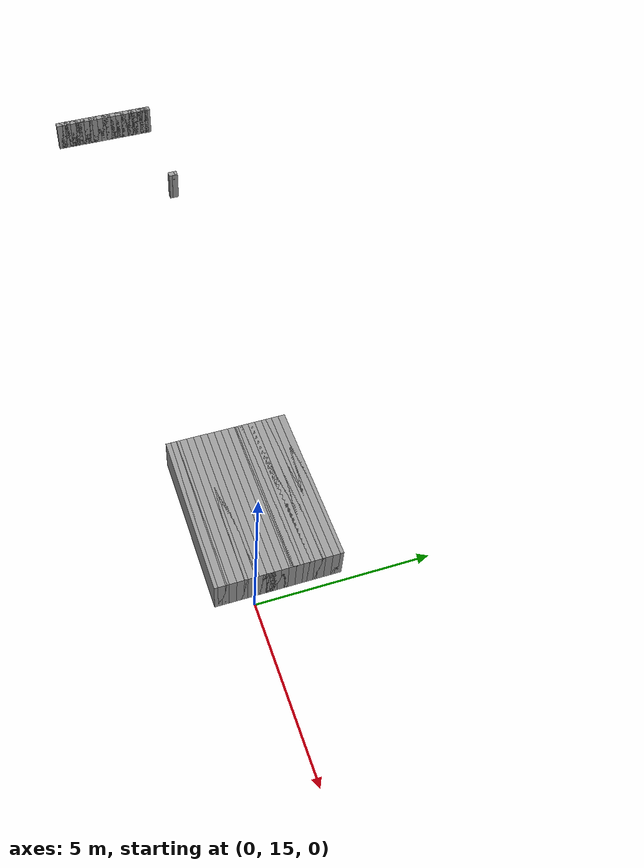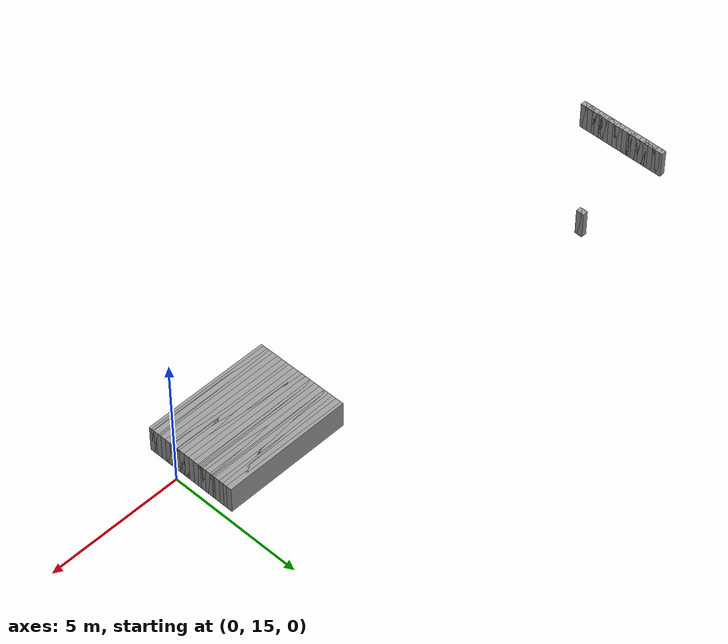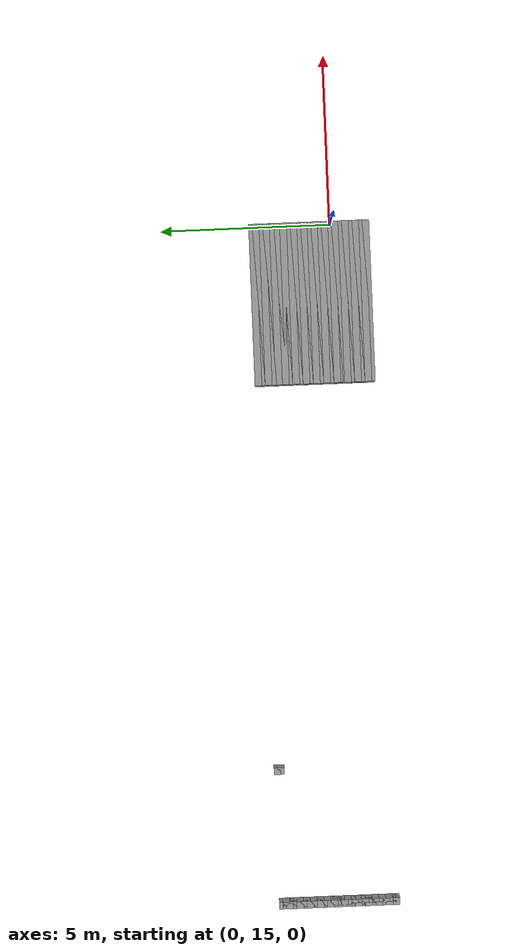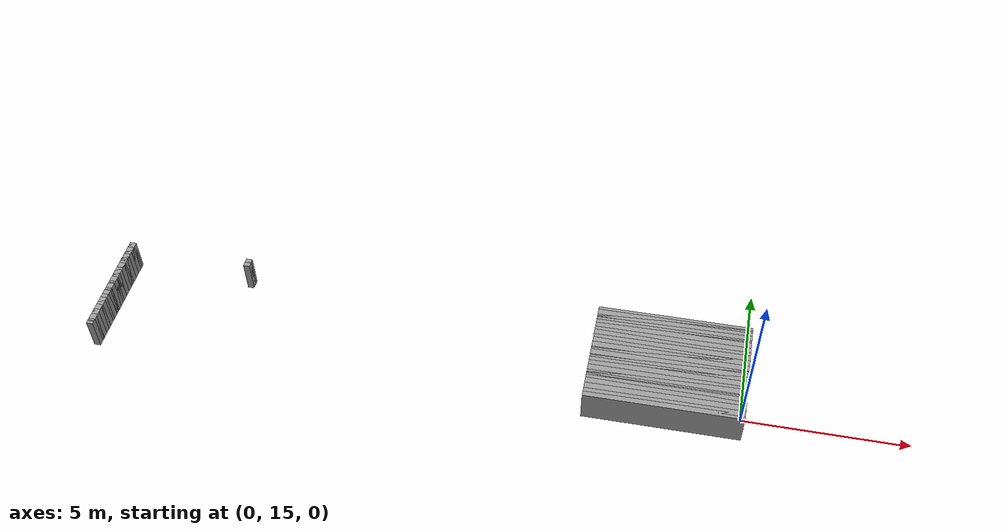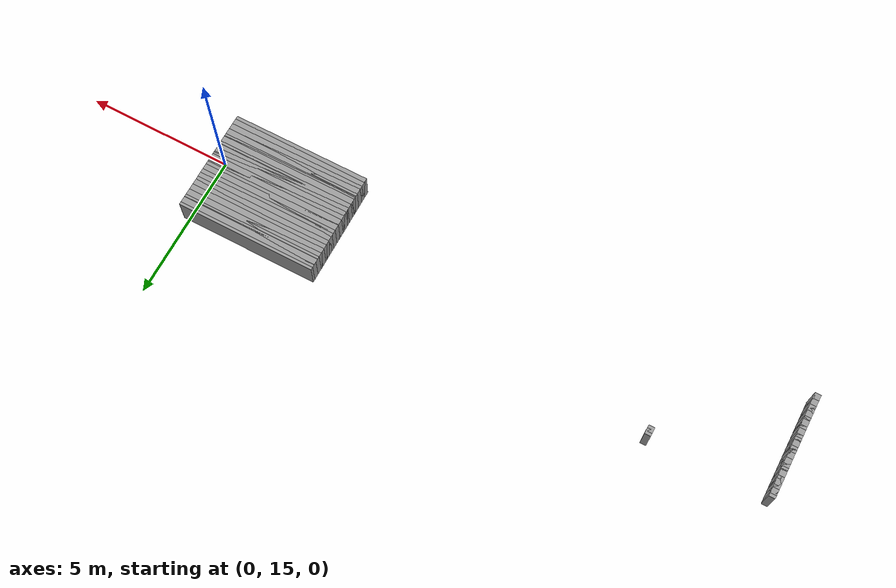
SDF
<sdf version="1.6">
 <world name="GridMap">
  <model name="GridMap">
   <link name="Wall_(198.0,139.0)">
    <collision name="Wall_(198.0,139.0)_Collision">
     <geometry><box><size>0.2 0.2 1.0</size></box></geometry>
     <pose>-19.8 13.9 0.5 0 -0 0</pose>
    </collision>
    <visual name="Wall_(198.0,139.0)_Visual">
     <geometry><box><size>0.2 0.2 1.0</size></box></geometry>
     <pose>-19.8 13.9 0.5 0 -0 0</pose>
     <material>
      <script><uri>file://media/materials/scripts/gazebo.material</uri><name>Gazebo/Grey</name></script>
      <ambient>1 1 1 1</ambient>
     </material>
     <meta><layer>0</layer></meta>
    </visual>
    <pose>0 0 0.5 0 -0 0</pose>
   </link>
   <link name="Wall_(23.5,140.0)">
    <collision name="Wall_(23.5,140.0)_Collision">
     <geometry><box><size>4.7 0.2 1.0</size></box></geometry>
     <pose>-2.35 14.0 0.5 0 -0 0</pose>
    </collision>
    <visual name="Wall_(23.5,140.0)_Visual">
     <geometry><box><size>4.7 0.2 1.0</size></box></geometry>
     <pose>-2.35 14.0 0.5 0 -0 0</pose>
     <material>
      <script><uri>file://media/materials/scripts/gazebo.material</uri><name>Gazebo/Grey</name></script>
      <ambient>1 1 1 1</ambient>
     </material>
     <meta><layer>0</layer></meta>
    </visual>
    <pose>0 0 0.5 0 -0 0</pose>
   </link>
   <link name="Wall_(198.0,140.0)">
    <collision name="Wall_(198.0,140.0)_Collision">
     <geometry><box><size>0.2 0.2 1.0</size></box></geometry>
     <pose>-19.8 14.0 0.5 0 -0 0</pose>
    </collision>
    <visual name="Wall_(198.0,140.0)_Visual">
     <geometry><box><size>0.2 0.2 1.0</size></box></geometry>
     <pose>-19.8 14.0 0.5 0 -0 0</pose>
     <material>
      <script><uri>file://media/materials/scripts/gazebo.material</uri><name>Gazebo/Grey</name></script>
      <ambient>1 1 1 1</ambient>
     </material>
     <meta><layer>0</layer></meta>
    </visual>
    <pose>0 0 0.5 0 -0 0</pose>
   </link>
   <link name="Wall_(23.5,141.0)">
    <collision name="Wall_(23.5,141.0)_Collision">
     <geometry><box><size>4.7 0.2 1.0</size></box></geometry>
     <pose>-2.35 14.1 0.5 0 -0 0</pose>
    </collision>
    <visual name="Wall_(23.5,141.0)_Visual">
     <geometry><box><size>4.7 0.2 1.0</size></box></geometry>
     <pose>-2.35 14.1 0.5 0 -0 0</pose>
     <material>
      <script><uri>file://media/materials/scripts/gazebo.material</uri><name>Gazebo/Grey</name></script>
      <ambient>1 1 1 1</ambient>
     </material>
     <meta><layer>0</layer></meta>
    </visual>
    <pose>0 0 0.5 0 -0 0</pose>
   </link>
   <link name="Wall_(198.0,141.0)">
    <collision name="Wall_(198.0,141.0)_Collision">
     <geometry><box><size>0.2 0.2 1.0</size></box></geometry>
     <pose>-19.8 14.1 0.5 0 -0 0</pose>
    </collision>
    <visual name="Wall_(198.0,141.0)_Visual">
     <geometry><box><size>0.2 0.2 1.0</size></box></geometry>
     <pose>-19.8 14.1 0.5 0 -0 0</pose>
     <material>
      <script><uri>file://media/materials/scripts/gazebo.material</uri><name>Gazebo/Grey</name></script>
      <ambient>1 1 1 1</ambient>
     </material>
     <meta><layer>0</layer></meta>
    </visual>
    <pose>0 0 0.5 0 -0 0</pose>
   </link>
   <link name="Wall_(23.5,142.0)">
    <collision name="Wall_(23.5,142.0)_Collision">
     <geometry><box><size>4.7 0.2 1.0</size></box></geometry>
     <pose>-2.35 14.2 0.5 0 -0 0</pose>
    </collision>
    <visual name="Wall_(23.5,142.0)_Visual">
     <geometry><box><size>4.7 0.2 1.0</size></box></geometry>
     <pose>-2.35 14.2 0.5 0 -0 0</pose>
     <material>
      <script><uri>file://media/materials/scripts/gazebo.material</uri><name>Gazebo/Grey</name></script>
      <ambient>1 1 1 1</ambient>
     </material>
     <meta><layer>0</layer></meta>
    </visual>
    <pose>0 0 0.5 0 -0 0</pose>
   </link>
   <link name="Wall_(198.0,142.0)">
    <collision name="Wall_(198.0,142.0)_Collision">
     <geometry><box><size>0.2 0.2 1.0</size></box></geometry>
     <pose>-19.8 14.2 0.5 0 -0 0</pose>
    </collision>
    <visual name="Wall_(198.0,142.0)_Visual">
     <geometry><box><size>0.2 0.2 1.0</size></box></geometry>
     <pose>-19.8 14.2 0.5 0 -0 0</pose>
     <material>
      <script><uri>file://media/materials/scripts/gazebo.material</uri><name>Gazebo/Grey</name></script>
      <ambient>1 1 1 1</ambient>
     </material>
     <meta><layer>0</layer></meta>
    </visual>
    <pose>0 0 0.5 0 -0 0</pose>
   </link>
   <link name="Wall_(23.5,143.0)">
    <collision name="Wall_(23.5,143.0)_Collision">
     <geometry><box><size>4.7 0.2 1.0</size></box></geometry>
     <pose>-2.35 14.3 0.5 0 -0 0</pose>
    </collision>
    <visual name="Wall_(23.5,143.0)_Visual">
     <geometry><box><size>4.7 0.2 1.0</size></box></geometry>
     <pose>-2.35 14.3 0.5 0 -0 0</pose>
     <material>
      <script><uri>file://media/materials/scripts/gazebo.material</uri><name>Gazebo/Grey</name></script>
      <ambient>1 1 1 1</ambient>
     </material>
     <meta><layer>0</layer></meta>
    </visual>
    <pose>0 0 0.5 0 -0 0</pose>
   </link>
   <link name="Wall_(198.0,143.0)">
    <collision name="Wall_(198.0,143.0)_Collision">
     <geometry><box><size>0.2 0.2 1.0</size></box></geometry>
     <pose>-19.8 14.3 0.5 0 -0 0</pose>
    </collision>
    <visual name="Wall_(198.0,143.0)_Visual">
     <geometry><box><size>0.2 0.2 1.0</size></box></geometry>
     <pose>-19.8 14.3 0.5 0 -0 0</pose>
     <material>
      <script><uri>file://media/materials/scripts/gazebo.material</uri><name>Gazebo/Grey</name></script>
      <ambient>1 1 1 1</ambient>
     </material>
     <meta><layer>0</layer></meta>
    </visual>
    <pose>0 0 0.5 0 -0 0</pose>
   </link>
   <link name="Wall_(23.5,144.0)">
    <collision name="Wall_(23.5,144.0)_Collision">
     <geometry><box><size>4.7 0.2 1.0</size></box></geometry>
     <pose>-2.35 14.4 0.5 0 -0 0</pose>
    </collision>
    <visual name="Wall_(23.5,144.0)_Visual">
     <geometry><box><size>4.7 0.2 1.0</size></box></geometry>
     <pose>-2.35 14.4 0.5 0 -0 0</pose>
     <material>
      <script><uri>file://media/materials/scripts/gazebo.material</uri><name>Gazebo/Grey</name></script>
      <ambient>1 1 1 1</ambient>
     </material>
     <meta><layer>0</layer></meta>
    </visual>
    <pose>0 0 0.5 0 -0 0</pose>
   </link>
   <link name="Wall_(198.0,144.0)">
    <collision name="Wall_(198.0,144.0)_Collision">
     <geometry><box><size>0.2 0.2 1.0</size></box></geometry>
     <pose>-19.8 14.4 0.5 0 -0 0</pose>
    </collision>
    <visual name="Wall_(198.0,144.0)_Visual">
     <geometry><box><size>0.2 0.2 1.0</size></box></geometry>
     <pose>-19.8 14.4 0.5 0 -0 0</pose>
     <material>
      <script><uri>file://media/materials/scripts/gazebo.material</uri><name>Gazebo/Grey</name></script>
      <ambient>1 1 1 1</ambient>
     </material>
     <meta><layer>0</layer></meta>
    </visual>
    <pose>0 0 0.5 0 -0 0</pose>
   </link>
   <link name="Wall_(23.5,145.0)">
    <collision name="Wall_(23.5,145.0)_Collision">
     <geometry><box><size>4.7 0.2 1.0</size></box></geometry>
     <pose>-2.35 14.5 0.5 0 -0 0</pose>
    </collision>
    <visual name="Wall_(23.5,145.0)_Visual">
     <geometry><box><size>4.7 0.2 1.0</size></box></geometry>
     <pose>-2.35 14.5 0.5 0 -0 0</pose>
     <material>
      <script><uri>file://media/materials/scripts/gazebo.material</uri><name>Gazebo/Grey</name></script>
      <ambient>1 1 1 1</ambient>
     </material>
     <meta><layer>0</layer></meta>
    </visual>
    <pose>0 0 0.5 0 -0 0</pose>
   </link>
   <link name="Wall_(198.0,145.0)">
    <collision name="Wall_(198.0,145.0)_Collision">
     <geometry><box><size>0.2 0.2 1.0</size></box></geometry>
     <pose>-19.8 14.5 0.5 0 -0 0</pose>
    </collision>
    <visual name="Wall_(198.0,145.0)_Visual">
     <geometry><box><size>0.2 0.2 1.0</size></box></geometry>
     <pose>-19.8 14.5 0.5 0 -0 0</pose>
     <material>
      <script><uri>file://media/materials/scripts/gazebo.material</uri><name>Gazebo/Grey</name></script>
      <ambient>1 1 1 1</ambient>
     </material>
     <meta><layer>0</layer></meta>
    </visual>
    <pose>0 0 0.5 0 -0 0</pose>
   </link>
   <link name="Wall_(23.5,146.0)">
    <collision name="Wall_(23.5,146.0)_Collision">
     <geometry><box><size>4.7 0.2 1.0</size></box></geometry>
     <pose>-2.35 14.6 0.5 0 -0 0</pose>
    </collision>
    <visual name="Wall_(23.5,146.0)_Visual">
     <geometry><box><size>4.7 0.2 1.0</size></box></geometry>
     <pose>-2.35 14.6 0.5 0 -0 0</pose>
     <material>
      <script><uri>file://media/materials/scripts/gazebo.material</uri><name>Gazebo/Grey</name></script>
      <ambient>1 1 1 1</ambient>
     </material>
     <meta><layer>0</layer></meta>
    </visual>
    <pose>0 0 0.5 0 -0 0</pose>
   </link>
   <link name="Wall_(198.0,146.0)">
    <collision name="Wall_(198.0,146.0)_Collision">
     <geometry><box><size>0.2 0.2 1.0</size></box></geometry>
     <pose>-19.8 14.6 0.5 0 -0 0</pose>
    </collision>
    <visual name="Wall_(198.0,146.0)_Visual">
     <geometry><box><size>0.2 0.2 1.0</size></box></geometry>
     <pose>-19.8 14.6 0.5 0 -0 0</pose>
     <material>
      <script><uri>file://media/materials/scripts/gazebo.material</uri><name>Gazebo/Grey</name></script>
      <ambient>1 1 1 1</ambient>
     </material>
     <meta><layer>0</layer></meta>
    </visual>
    <pose>0 0 0.5 0 -0 0</pose>
   </link>
   <link name="Wall_(23.5,147.0)">
    <collision name="Wall_(23.5,147.0)_Collision">
     <geometry><box><size>4.7 0.2 1.0</size></box></geometry>
     <pose>-2.35 14.7 0.5 0 -0 0</pose>
    </collision>
    <visual name="Wall_(23.5,147.0)_Visual">
     <geometry><box><size>4.7 0.2 1.0</size></box></geometry>
     <pose>-2.35 14.7 0.5 0 -0 0</pose>
     <material>
      <script><uri>file://media/materials/scripts/gazebo.material</uri><name>Gazebo/Grey</name></script>
      <ambient>1 1 1 1</ambient>
     </material>
     <meta><layer>0</layer></meta>
    </visual>
    <pose>0 0 0.5 0 -0 0</pose>
   </link>
   <link name="Wall_(198.0,147.0)">
    <collision name="Wall_(198.0,147.0)_Collision">
     <geometry><box><size>0.2 0.2 1.0</size></box></geometry>
     <pose>-19.8 14.7 0.5 0 -0 0</pose>
    </collision>
    <visual name="Wall_(198.0,147.0)_Visual">
     <geometry><box><size>0.2 0.2 1.0</size></box></geometry>
     <pose>-19.8 14.7 0.5 0 -0 0</pose>
     <material>
      <script><uri>file://media/materials/scripts/gazebo.material</uri><name>Gazebo/Grey</name></script>
      <ambient>1 1 1 1</ambient>
     </material>
     <meta><layer>0</layer></meta>
    </visual>
    <pose>0 0 0.5 0 -0 0</pose>
   </link>
   <link name="Wall_(23.5,148.0)">
    <collision name="Wall_(23.5,148.0)_Collision">
     <geometry><box><size>4.7 0.2 1.0</size></box></geometry>
     <pose>-2.35 14.8 0.5 0 -0 0</pose>
    </collision>
    <visual name="Wall_(23.5,148.0)_Visual">
     <geometry><box><size>4.7 0.2 1.0</size></box></geometry>
     <pose>-2.35 14.8 0.5 0 -0 0</pose>
     <material>
      <script><uri>file://media/materials/scripts/gazebo.material</uri><name>Gazebo/Grey</name></script>
      <ambient>1 1 1 1</ambient>
     </material>
     <meta><layer>0</layer></meta>
    </visual>
    <pose>0 0 0.5 0 -0 0</pose>
   </link>
   <link name="Wall_(198.0,148.0)">
    <collision name="Wall_(198.0,148.0)_Collision">
     <geometry><box><size>0.2 0.2 1.0</size></box></geometry>
     <pose>-19.8 14.8 0.5 0 -0 0</pose>
    </collision>
    <visual name="Wall_(198.0,148.0)_Visual">
     <geometry><box><size>0.2 0.2 1.0</size></box></geometry>
     <pose>-19.8 14.8 0.5 0 -0 0</pose>
     <material>
      <script><uri>file://media/materials/scripts/gazebo.material</uri><name>Gazebo/Grey</name></script>
      <ambient>1 1 1 1</ambient>
     </material>
     <meta><layer>0</layer></meta>
    </visual>
    <pose>0 0 0.5 0 -0 0</pose>
   </link>
   <link name="Wall_(23.5,149.0)">
    <collision name="Wall_(23.5,149.0)_Collision">
     <geometry><box><size>4.7 0.2 1.0</size></box></geometry>
     <pose>-2.35 14.9 0.5 0 -0 0</pose>
    </collision>
    <visual name="Wall_(23.5,149.0)_Visual">
     <geometry><box><size>4.7 0.2 1.0</size></box></geometry>
     <pose>-2.35 14.9 0.5 0 -0 0</pose>
     <material>
      <script><uri>file://media/materials/scripts/gazebo.material</uri><name>Gazebo/Grey</name></script>
      <ambient>1 1 1 1</ambient>
     </material>
     <meta><layer>0</layer></meta>
    </visual>
    <pose>0 0 0.5 0 -0 0</pose>
   </link>
   <link name="Wall_(198.0,149.0)">
    <collision name="Wall_(198.0,149.0)_Collision">
     <geometry><box><size>0.2 0.2 1.0</size></box></geometry>
     <pose>-19.8 14.9 0.5 0 -0 0</pose>
    </collision>
    <visual name="Wall_(198.0,149.0)_Visual">
     <geometry><box><size>0.2 0.2 1.0</size></box></geometry>
     <pose>-19.8 14.9 0.5 0 -0 0</pose>
     <material>
      <script><uri>file://media/materials/scripts/gazebo.material</uri><name>Gazebo/Grey</name></script>
      <ambient>1 1 1 1</ambient>
     </material>
     <meta><layer>0</layer></meta>
    </visual>
    <pose>0 0 0.5 0 -0 0</pose>
   </link>
   <link name="Wall_(23.5,150.0)">
    <collision name="Wall_(23.5,150.0)_Collision">
     <geometry><box><size>4.7 0.2 1.0</size></box></geometry>
     <pose>-2.35 15.0 0.5 0 -0 0</pose>
    </collision>
    <visual name="Wall_(23.5,150.0)_Visual">
     <geometry><box><size>4.7 0.2 1.0</size></box></geometry>
     <pose>-2.35 15.0 0.5 0 -0 0</pose>
     <material>
      <script><uri>file://media/materials/scripts/gazebo.material</uri><name>Gazebo/Grey</name></script>
      <ambient>1 1 1 1</ambient>
     </material>
     <meta><layer>0</layer></meta>
    </visual>
    <pose>0 0 0.5 0 -0 0</pose>
   </link>
   <link name="Wall_(198.0,150.0)">
    <collision name="Wall_(198.0,150.0)_Collision">
     <geometry><box><size>0.2 0.2 1.0</size></box></geometry>
     <pose>-19.8 15.0 0.5 0 -0 0</pose>
    </collision>
    <visual name="Wall_(198.0,150.0)_Visual">
     <geometry><box><size>0.2 0.2 1.0</size></box></geometry>
     <pose>-19.8 15.0 0.5 0 -0 0</pose>
     <material>
      <script><uri>file://media/materials/scripts/gazebo.material</uri><name>Gazebo/Grey</name></script>
      <ambient>1 1 1 1</ambient>
     </material>
     <meta><layer>0</layer></meta>
    </visual>
    <pose>0 0 0.5 0 -0 0</pose>
   </link>
   <link name="Wall_(23.5,151.0)">
    <collision name="Wall_(23.5,151.0)_Collision">
     <geometry><box><size>4.7 0.2 1.0</size></box></geometry>
     <pose>-2.35 15.1 0.5 0 -0 0</pose>
    </collision>
    <visual name="Wall_(23.5,151.0)_Visual">
     <geometry><box><size>4.7 0.2 1.0</size></box></geometry>
     <pose>-2.35 15.1 0.5 0 -0 0</pose>
     <material>
      <script><uri>file://media/materials/scripts/gazebo.material</uri><name>Gazebo/Grey</name></script>
      <ambient>1 1 1 1</ambient>
     </material>
     <meta><layer>0</layer></meta>
    </visual>
    <pose>0 0 0.5 0 -0 0</pose>
   </link>
   <link name="Wall_(198.0,151.0)">
    <collision name="Wall_(198.0,151.0)_Collision">
     <geometry><box><size>0.2 0.2 1.0</size></box></geometry>
     <pose>-19.8 15.1 0.5 0 -0 0</pose>
    </collision>
    <visual name="Wall_(198.0,151.0)_Visual">
     <geometry><box><size>0.2 0.2 1.0</size></box></geometry>
     <pose>-19.8 15.1 0.5 0 -0 0</pose>
     <material>
      <script><uri>file://media/materials/scripts/gazebo.material</uri><name>Gazebo/Grey</name></script>
      <ambient>1 1 1 1</ambient>
     </material>
     <meta><layer>0</layer></meta>
    </visual>
    <pose>0 0 0.5 0 -0 0</pose>
   </link>
   <link name="Wall_(23.5,152.0)">
    <collision name="Wall_(23.5,152.0)_Collision">
     <geometry><box><size>4.7 0.2 1.0</size></box></geometry>
     <pose>-2.35 15.2 0.5 0 -0 0</pose>
    </collision>
    <visual name="Wall_(23.5,152.0)_Visual">
     <geometry><box><size>4.7 0.2 1.0</size></box></geometry>
     <pose>-2.35 15.2 0.5 0 -0 0</pose>
     <material>
      <script><uri>file://media/materials/scripts/gazebo.material</uri><name>Gazebo/Grey</name></script>
      <ambient>1 1 1 1</ambient>
     </material>
     <meta><layer>0</layer></meta>
    </visual>
    <pose>0 0 0.5 0 -0 0</pose>
   </link>
   <link name="Wall_(198.0,152.0)">
    <collision name="Wall_(198.0,152.0)_Collision">
     <geometry><box><size>0.2 0.2 1.0</size></box></geometry>
     <pose>-19.8 15.2 0.5 0 -0 0</pose>
    </collision>
    <visual name="Wall_(198.0,152.0)_Visual">
     <geometry><box><size>0.2 0.2 1.0</size></box></geometry>
     <pose>-19.8 15.2 0.5 0 -0 0</pose>
     <material>
      <script><uri>file://media/materials/scripts/gazebo.material</uri><name>Gazebo/Grey</name></script>
      <ambient>1 1 1 1</ambient>
     </material>
     <meta><layer>0</layer></meta>
    </visual>
    <pose>0 0 0.5 0 -0 0</pose>
   </link>
   <link name="Wall_(23.5,153.0)">
    <collision name="Wall_(23.5,153.0)_Collision">
     <geometry><box><size>4.7 0.2 1.0</size></box></geometry>
     <pose>-2.35 15.3 0.5 0 -0 0</pose>
    </collision>
    <visual name="Wall_(23.5,153.0)_Visual">
     <geometry><box><size>4.7 0.2 1.0</size></box></geometry>
     <pose>-2.35 15.3 0.5 0 -0 0</pose>
     <material>
      <script><uri>file://media/materials/scripts/gazebo.material</uri><name>Gazebo/Grey</name></script>
      <ambient>1 1 1 1</ambient>
     </material>
     <meta><layer>0</layer></meta>
    </visual>
    <pose>0 0 0.5 0 -0 0</pose>
   </link>
   <link name="Wall_(198.0,153.0)">
    <collision name="Wall_(198.0,153.0)_Collision">
     <geometry><box><size>0.2 0.2 1.0</size></box></geometry>
     <pose>-19.8 15.3 0.5 0 -0 0</pose>
    </collision>
    <visual name="Wall_(198.0,153.0)_Visual">
     <geometry><box><size>0.2 0.2 1.0</size></box></geometry>
     <pose>-19.8 15.3 0.5 0 -0 0</pose>
     <material>
      <script><uri>file://media/materials/scripts/gazebo.material</uri><name>Gazebo/Grey</name></script>
      <ambient>1 1 1 1</ambient>
     </material>
     <meta><layer>0</layer></meta>
    </visual>
    <pose>0 0 0.5 0 -0 0</pose>
   </link>
   <link name="Wall_(23.5,154.0)">
    <collision name="Wall_(23.5,154.0)_Collision">
     <geometry><box><size>4.7 0.2 1.0</size></box></geometry>
     <pose>-2.35 15.4 0.5 0 -0 0</pose>
    </collision>
    <visual name="Wall_(23.5,154.0)_Visual">
     <geometry><box><size>4.7 0.2 1.0</size></box></geometry>
     <pose>-2.35 15.4 0.5 0 -0 0</pose>
     <material>
      <script><uri>file://media/materials/scripts/gazebo.material</uri><name>Gazebo/Grey</name></script>
      <ambient>1 1 1 1</ambient>
     </material>
     <meta><layer>0</layer></meta>
    </visual>
    <pose>0 0 0.5 0 -0 0</pose>
   </link>
   <link name="Wall_(198.0,154.0)">
    <collision name="Wall_(198.0,154.0)_Collision">
     <geometry><box><size>0.2 0.2 1.0</size></box></geometry>
     <pose>-19.8 15.4 0.5 0 -0 0</pose>
    </collision>
    <visual name="Wall_(198.0,154.0)_Visual">
     <geometry><box><size>0.2 0.2 1.0</size></box></geometry>
     <pose>-19.8 15.4 0.5 0 -0 0</pose>
     <material>
      <script><uri>file://media/materials/scripts/gazebo.material</uri><name>Gazebo/Grey</name></script>
      <ambient>1 1 1 1</ambient>
     </material>
     <meta><layer>0</layer></meta>
    </visual>
    <pose>0 0 0.5 0 -0 0</pose>
   </link>
   <link name="Wall_(23.5,155.0)">
    <collision name="Wall_(23.5,155.0)_Collision">
     <geometry><box><size>4.7 0.2 1.0</size></box></geometry>
     <pose>-2.35 15.5 0.5 0 -0 0</pose>
    </collision>
    <visual name="Wall_(23.5,155.0)_Visual">
     <geometry><box><size>4.7 0.2 1.0</size></box></geometry>
     <pose>-2.35 15.5 0.5 0 -0 0</pose>
     <material>
      <script><uri>file://media/materials/scripts/gazebo.material</uri><name>Gazebo/Grey</name></script>
      <ambient>1 1 1 1</ambient>
     </material>
     <meta><layer>0</layer></meta>
    </visual>
    <pose>0 0 0.5 0 -0 0</pose>
   </link>
   <link name="Wall_(198.0,155.0)">
    <collision name="Wall_(198.0,155.0)_Collision">
     <geometry><box><size>0.2 0.2 1.0</size></box></geometry>
     <pose>-19.8 15.5 0.5 0 -0 0</pose>
    </collision>
    <visual name="Wall_(198.0,155.0)_Visual">
     <geometry><box><size>0.2 0.2 1.0</size></box></geometry>
     <pose>-19.8 15.5 0.5 0 -0 0</pose>
     <material>
      <script><uri>file://media/materials/scripts/gazebo.material</uri><name>Gazebo/Grey</name></script>
      <ambient>1 1 1 1</ambient>
     </material>
     <meta><layer>0</layer></meta>
    </visual>
    <pose>0 0 0.5 0 -0 0</pose>
   </link>
   <link name="Wall_(23.5,156.0)">
    <collision name="Wall_(23.5,156.0)_Collision">
     <geometry><box><size>4.7 0.2 1.0</size></box></geometry>
     <pose>-2.35 15.6 0.5 0 -0 0</pose>
    </collision>
    <visual name="Wall_(23.5,156.0)_Visual">
     <geometry><box><size>4.7 0.2 1.0</size></box></geometry>
     <pose>-2.35 15.6 0.5 0 -0 0</pose>
     <material>
      <script><uri>file://media/materials/scripts/gazebo.material</uri><name>Gazebo/Grey</name></script>
      <ambient>1 1 1 1</ambient>
     </material>
     <meta><layer>0</layer></meta>
    </visual>
    <pose>0 0 0.5 0 -0 0</pose>
   </link>
   <link name="Wall_(198.0,156.0)">
    <collision name="Wall_(198.0,156.0)_Collision">
     <geometry><box><size>0.2 0.2 1.0</size></box></geometry>
     <pose>-19.8 15.6 0.5 0 -0 0</pose>
    </collision>
    <visual name="Wall_(198.0,156.0)_Visual">
     <geometry><box><size>0.2 0.2 1.0</size></box></geometry>
     <pose>-19.8 15.6 0.5 0 -0 0</pose>
     <material>
      <script><uri>file://media/materials/scripts/gazebo.material</uri><name>Gazebo/Grey</name></script>
      <ambient>1 1 1 1</ambient>
     </material>
     <meta><layer>0</layer></meta>
    </visual>
    <pose>0 0 0.5 0 -0 0</pose>
   </link>
   <link name="Wall_(23.5,157.0)">
    <collision name="Wall_(23.5,157.0)_Collision">
     <geometry><box><size>4.7 0.2 1.0</size></box></geometry>
     <pose>-2.35 15.7 0.5 0 -0 0</pose>
    </collision>
    <visual name="Wall_(23.5,157.0)_Visual">
     <geometry><box><size>4.7 0.2 1.0</size></box></geometry>
     <pose>-2.35 15.7 0.5 0 -0 0</pose>
     <material>
      <script><uri>file://media/materials/scripts/gazebo.material</uri><name>Gazebo/Grey</name></script>
      <ambient>1 1 1 1</ambient>
     </material>
     <meta><layer>0</layer></meta>
    </visual>
    <pose>0 0 0.5 0 -0 0</pose>
   </link>
   <link name="Wall_(198.0,157.0)">
    <collision name="Wall_(198.0,157.0)_Collision">
     <geometry><box><size>0.2 0.2 1.0</size></box></geometry>
     <pose>-19.8 15.7 0.5 0 -0 0</pose>
    </collision>
    <visual name="Wall_(198.0,157.0)_Visual">
     <geometry><box><size>0.2 0.2 1.0</size></box></geometry>
     <pose>-19.8 15.7 0.5 0 -0 0</pose>
     <material>
      <script><uri>file://media/materials/scripts/gazebo.material</uri><name>Gazebo/Grey</name></script>
      <ambient>1 1 1 1</ambient>
     </material>
     <meta><layer>0</layer></meta>
    </visual>
    <pose>0 0 0.5 0 -0 0</pose>
   </link>
   <link name="Wall_(23.5,158.0)">
    <collision name="Wall_(23.5,158.0)_Collision">
     <geometry><box><size>4.7 0.2 1.0</size></box></geometry>
     <pose>-2.35 15.8 0.5 0 -0 0</pose>
    </collision>
    <visual name="Wall_(23.5,158.0)_Visual">
     <geometry><box><size>4.7 0.2 1.0</size></box></geometry>
     <pose>-2.35 15.8 0.5 0 -0 0</pose>
     <material>
      <script><uri>file://media/materials/scripts/gazebo.material</uri><name>Gazebo/Grey</name></script>
      <ambient>1 1 1 1</ambient>
     </material>
     <meta><layer>0</layer></meta>
    </visual>
    <pose>0 0 0.5 0 -0 0</pose>
   </link>
   <link name="Wall_(198.0,158.0)">
    <collision name="Wall_(198.0,158.0)_Collision">
     <geometry><box><size>0.2 0.2 1.0</size></box></geometry>
     <pose>-19.8 15.8 0.5 0 -0 0</pose>
    </collision>
    <visual name="Wall_(198.0,158.0)_Visual">
     <geometry><box><size>0.2 0.2 1.0</size></box></geometry>
     <pose>-19.8 15.8 0.5 0 -0 0</pose>
     <material>
      <script><uri>file://media/materials/scripts/gazebo.material</uri><name>Gazebo/Grey</name></script>
      <ambient>1 1 1 1</ambient>
     </material>
     <meta><layer>0</layer></meta>
    </visual>
    <pose>0 0 0.5 0 -0 0</pose>
   </link>
   <link name="Wall_(23.5,159.0)">
    <collision name="Wall_(23.5,159.0)_Collision">
     <geometry><box><size>4.7 0.2 1.0</size></box></geometry>
     <pose>-2.35 15.9 0.5 0 -0 0</pose>
    </collision>
    <visual name="Wall_(23.5,159.0)_Visual">
     <geometry><box><size>4.7 0.2 1.0</size></box></geometry>
     <pose>-2.35 15.9 0.5 0 -0 0</pose>
     <material>
      <script><uri>file://media/materials/scripts/gazebo.material</uri><name>Gazebo/Grey</name></script>
      <ambient>1 1 1 1</ambient>
     </material>
     <meta><layer>0</layer></meta>
    </visual>
    <pose>0 0 0.5 0 -0 0</pose>
   </link>
   <link name="Wall_(198.0,159.0)">
    <collision name="Wall_(198.0,159.0)_Collision">
     <geometry><box><size>0.2 0.2 1.0</size></box></geometry>
     <pose>-19.8 15.9 0.5 0 -0 0</pose>
    </collision>
    <visual name="Wall_(198.0,159.0)_Visual">
     <geometry><box><size>0.2 0.2 1.0</size></box></geometry>
     <pose>-19.8 15.9 0.5 0 -0 0</pose>
     <material>
      <script><uri>file://media/materials/scripts/gazebo.material</uri><name>Gazebo/Grey</name></script>
      <ambient>1 1 1 1</ambient>
     </material>
     <meta><layer>0</layer></meta>
    </visual>
    <pose>0 0 0.5 0 -0 0</pose>
   </link>
   <link name="Wall_(23.5,160.0)">
    <collision name="Wall_(23.5,160.0)_Collision">
     <geometry><box><size>4.7 0.2 1.0</size></box></geometry>
     <pose>-2.35 16.0 0.5 0 -0 0</pose>
    </collision>
    <visual name="Wall_(23.5,160.0)_Visual">
     <geometry><box><size>4.7 0.2 1.0</size></box></geometry>
     <pose>-2.35 16.0 0.5 0 -0 0</pose>
     <material>
      <script><uri>file://media/materials/scripts/gazebo.material</uri><name>Gazebo/Grey</name></script>
      <ambient>1 1 1 1</ambient>
     </material>
     <meta><layer>0</layer></meta>
    </visual>
    <pose>0 0 0.5 0 -0 0</pose>
   </link>
   <link name="Wall_(198.0,160.0)">
    <collision name="Wall_(198.0,160.0)_Collision">
     <geometry><box><size>0.2 0.2 1.0</size></box></geometry>
     <pose>-19.8 16.0 0.5 0 -0 0</pose>
    </collision>
    <visual name="Wall_(198.0,160.0)_Visual">
     <geometry><box><size>0.2 0.2 1.0</size></box></geometry>
     <pose>-19.8 16.0 0.5 0 -0 0</pose>
     <material>
      <script><uri>file://media/materials/scripts/gazebo.material</uri><name>Gazebo/Grey</name></script>
      <ambient>1 1 1 1</ambient>
     </material>
     <meta><layer>0</layer></meta>
    </visual>
    <pose>0 0 0.5 0 -0 0</pose>
   </link>
   <link name="Wall_(23.5,161.0)">
    <collision name="Wall_(23.5,161.0)_Collision">
     <geometry><box><size>4.7 0.2 1.0</size></box></geometry>
     <pose>-2.35 16.1 0.5 0 -0 0</pose>
    </collision>
    <visual name="Wall_(23.5,161.0)_Visual">
     <geometry><box><size>4.7 0.2 1.0</size></box></geometry>
     <pose>-2.35 16.1 0.5 0 -0 0</pose>
     <material>
      <script><uri>file://media/materials/scripts/gazebo.material</uri><name>Gazebo/Grey</name></script>
      <ambient>1 1 1 1</ambient>
     </material>
     <meta><layer>0</layer></meta>
    </visual>
    <pose>0 0 0.5 0 -0 0</pose>
   </link>
   <link name="Wall_(198.0,161.0)">
    <collision name="Wall_(198.0,161.0)_Collision">
     <geometry><box><size>0.2 0.2 1.0</size></box></geometry>
     <pose>-19.8 16.1 0.5 0 -0 0</pose>
    </collision>
    <visual name="Wall_(198.0,161.0)_Visual">
     <geometry><box><size>0.2 0.2 1.0</size></box></geometry>
     <pose>-19.8 16.1 0.5 0 -0 0</pose>
     <material>
      <script><uri>file://media/materials/scripts/gazebo.material</uri><name>Gazebo/Grey</name></script>
      <ambient>1 1 1 1</ambient>
     </material>
     <meta><layer>0</layer></meta>
    </visual>
    <pose>0 0 0.5 0 -0 0</pose>
   </link>
   <link name="Wall_(23.5,162.0)">
    <collision name="Wall_(23.5,162.0)_Collision">
     <geometry><box><size>4.7 0.2 1.0</size></box></geometry>
     <pose>-2.35 16.2 0.5 0 -0 0</pose>
    </collision>
    <visual name="Wall_(23.5,162.0)_Visual">
     <geometry><box><size>4.7 0.2 1.0</size></box></geometry>
     <pose>-2.35 16.2 0.5 0 -0 0</pose>
     <material>
      <script><uri>file://media/materials/scripts/gazebo.material</uri><name>Gazebo/Grey</name></script>
      <ambient>1 1 1 1</ambient>
     </material>
     <meta><layer>0</layer></meta>
    </visual>
    <pose>0 0 0.5 0 -0 0</pose>
   </link>
   <link name="Wall_(198.0,162.0)">
    <collision name="Wall_(198.0,162.0)_Collision">
     <geometry><box><size>0.2 0.2 1.0</size></box></geometry>
     <pose>-19.8 16.2 0.5 0 -0 0</pose>
    </collision>
    <visual name="Wall_(198.0,162.0)_Visual">
     <geometry><box><size>0.2 0.2 1.0</size></box></geometry>
     <pose>-19.8 16.2 0.5 0 -0 0</pose>
     <material>
      <script><uri>file://media/materials/scripts/gazebo.material</uri><name>Gazebo/Grey</name></script>
      <ambient>1 1 1 1</ambient>
     </material>
     <meta><layer>0</layer></meta>
    </visual>
    <pose>0 0 0.5 0 -0 0</pose>
   </link>
   <link name="Wall_(23.5,163.0)">
    <collision name="Wall_(23.5,163.0)_Collision">
     <geometry><box><size>4.7 0.2 1.0</size></box></geometry>
     <pose>-2.35 16.3 0.5 0 -0 0</pose>
    </collision>
    <visual name="Wall_(23.5,163.0)_Visual">
     <geometry><box><size>4.7 0.2 1.0</size></box></geometry>
     <pose>-2.35 16.3 0.5 0 -0 0</pose>
     <material>
      <script><uri>file://media/materials/scripts/gazebo.material</uri><name>Gazebo/Grey</name></script>
      <ambient>1 1 1 1</ambient>
     </material>
     <meta><layer>0</layer></meta>
    </visual>
    <pose>0 0 0.5 0 -0 0</pose>
   </link>
   <link name="Wall_(198.0,163.0)">
    <collision name="Wall_(198.0,163.0)_Collision">
     <geometry><box><size>0.2 0.2 1.0</size></box></geometry>
     <pose>-19.8 16.3 0.5 0 -0 0</pose>
    </collision>
    <visual name="Wall_(198.0,163.0)_Visual">
     <geometry><box><size>0.2 0.2 1.0</size></box></geometry>
     <pose>-19.8 16.3 0.5 0 -0 0</pose>
     <material>
      <script><uri>file://media/materials/scripts/gazebo.material</uri><name>Gazebo/Grey</name></script>
      <ambient>1 1 1 1</ambient>
     </material>
     <meta><layer>0</layer></meta>
    </visual>
    <pose>0 0 0.5 0 -0 0</pose>
   </link>
   <link name="Wall_(23.5,164.0)">
    <collision name="Wall_(23.5,164.0)_Collision">
     <geometry><box><size>4.7 0.2 1.0</size></box></geometry>
     <pose>-2.35 16.4 0.5 0 -0 0</pose>
    </collision>
    <visual name="Wall_(23.5,164.0)_Visual">
     <geometry><box><size>4.7 0.2 1.0</size></box></geometry>
     <pose>-2.35 16.4 0.5 0 -0 0</pose>
     <material>
      <script><uri>file://media/materials/scripts/gazebo.material</uri><name>Gazebo/Grey</name></script>
      <ambient>1 1 1 1</ambient>
     </material>
     <meta><layer>0</layer></meta>
    </visual>
    <pose>0 0 0.5 0 -0 0</pose>
   </link>
   <link name="Wall_(198.0,164.0)">
    <collision name="Wall_(198.0,164.0)_Collision">
     <geometry><box><size>0.2 0.2 1.0</size></box></geometry>
     <pose>-19.8 16.4 0.5 0 -0 0</pose>
    </collision>
    <visual name="Wall_(198.0,164.0)_Visual">
     <geometry><box><size>0.2 0.2 1.0</size></box></geometry>
     <pose>-19.8 16.4 0.5 0 -0 0</pose>
     <material>
      <script><uri>file://media/materials/scripts/gazebo.material</uri><name>Gazebo/Grey</name></script>
      <ambient>1 1 1 1</ambient>
     </material>
     <meta><layer>0</layer></meta>
    </visual>
    <pose>0 0 0.5 0 -0 0</pose>
   </link>
   <link name="Wall_(23.5,165.0)">
    <collision name="Wall_(23.5,165.0)_Collision">
     <geometry><box><size>4.7 0.2 1.0</size></box></geometry>
     <pose>-2.35 16.5 0.5 0 -0 0</pose>
    </collision>
    <visual name="Wall_(23.5,165.0)_Visual">
     <geometry><box><size>4.7 0.2 1.0</size></box></geometry>
     <pose>-2.35 16.5 0.5 0 -0 0</pose>
     <material>
      <script><uri>file://media/materials/scripts/gazebo.material</uri><name>Gazebo/Grey</name></script>
      <ambient>1 1 1 1</ambient>
     </material>
     <meta><layer>0</layer></meta>
    </visual>
    <pose>0 0 0.5 0 -0 0</pose>
   </link>
   <link name="Wall_(198.0,165.0)">
    <collision name="Wall_(198.0,165.0)_Collision">
     <geometry><box><size>0.2 0.2 1.0</size></box></geometry>
     <pose>-19.8 16.5 0.5 0 -0 0</pose>
    </collision>
    <visual name="Wall_(198.0,165.0)_Visual">
     <geometry><box><size>0.2 0.2 1.0</size></box></geometry>
     <pose>-19.8 16.5 0.5 0 -0 0</pose>
     <material>
      <script><uri>file://media/materials/scripts/gazebo.material</uri><name>Gazebo/Grey</name></script>
      <ambient>1 1 1 1</ambient>
     </material>
     <meta><layer>0</layer></meta>
    </visual>
    <pose>0 0 0.5 0 -0 0</pose>
   </link>
   <link name="Wall_(23.5,166.0)">
    <collision name="Wall_(23.5,166.0)_Collision">
     <geometry><box><size>4.7 0.2 1.0</size></box></geometry>
     <pose>-2.35 16.6 0.5 0 -0 0</pose>
    </collision>
    <visual name="Wall_(23.5,166.0)_Visual">
     <geometry><box><size>4.7 0.2 1.0</size></box></geometry>
     <pose>-2.35 16.6 0.5 0 -0 0</pose>
     <material>
      <script><uri>file://media/materials/scripts/gazebo.material</uri><name>Gazebo/Grey</name></script>
      <ambient>1 1 1 1</ambient>
     </material>
     <meta><layer>0</layer></meta>
    </visual>
    <pose>0 0 0.5 0 -0 0</pose>
   </link>
   <link name="Wall_(198.0,166.0)">
    <collision name="Wall_(198.0,166.0)_Collision">
     <geometry><box><size>0.2 0.2 1.0</size></box></geometry>
     <pose>-19.8 16.6 0.5 0 -0 0</pose>
    </collision>
    <visual name="Wall_(198.0,166.0)_Visual">
     <geometry><box><size>0.2 0.2 1.0</size></box></geometry>
     <pose>-19.8 16.6 0.5 0 -0 0</pose>
     <material>
      <script><uri>file://media/materials/scripts/gazebo.material</uri><name>Gazebo/Grey</name></script>
      <ambient>1 1 1 1</ambient>
     </material>
     <meta><layer>0</layer></meta>
    </visual>
    <pose>0 0 0.5 0 -0 0</pose>
   </link>
   <link name="Wall_(23.5,167.0)">
    <collision name="Wall_(23.5,167.0)_Collision">
     <geometry><box><size>4.7 0.2 1.0</size></box></geometry>
     <pose>-2.35 16.7 0.5 0 -0 0</pose>
    </collision>
    <visual name="Wall_(23.5,167.0)_Visual">
     <geometry><box><size>4.7 0.2 1.0</size></box></geometry>
     <pose>-2.35 16.7 0.5 0 -0 0</pose>
     <material>
      <script><uri>file://media/materials/scripts/gazebo.material</uri><name>Gazebo/Grey</name></script>
      <ambient>1 1 1 1</ambient>
     </material>
     <meta><layer>0</layer></meta>
    </visual>
    <pose>0 0 0.5 0 -0 0</pose>
   </link>
   <link name="Wall_(198.0,167.0)">
    <collision name="Wall_(198.0,167.0)_Collision">
     <geometry><box><size>0.2 0.2 1.0</size></box></geometry>
     <pose>-19.8 16.7 0.5 0 -0 0</pose>
    </collision>
    <visual name="Wall_(198.0,167.0)_Visual">
     <geometry><box><size>0.2 0.2 1.0</size></box></geometry>
     <pose>-19.8 16.7 0.5 0 -0 0</pose>
     <material>
      <script><uri>file://media/materials/scripts/gazebo.material</uri><name>Gazebo/Grey</name></script>
      <ambient>1 1 1 1</ambient>
     </material>
     <meta><layer>0</layer></meta>
    </visual>
    <pose>0 0 0.5 0 -0 0</pose>
   </link>
   <link name="Wall_(23.5,168.0)">
    <collision name="Wall_(23.5,168.0)_Collision">
     <geometry><box><size>4.7 0.2 1.0</size></box></geometry>
     <pose>-2.35 16.8 0.5 0 -0 0</pose>
    </collision>
    <visual name="Wall_(23.5,168.0)_Visual">
     <geometry><box><size>4.7 0.2 1.0</size></box></geometry>
     <pose>-2.35 16.8 0.5 0 -0 0</pose>
     <material>
      <script><uri>file://media/materials/scripts/gazebo.material</uri><name>Gazebo/Grey</name></script>
      <ambient>1 1 1 1</ambient>
     </material>
     <meta><layer>0</layer></meta>
    </visual>
    <pose>0 0 0.5 0 -0 0</pose>
   </link>
   <link name="Wall_(198.0,168.0)">
    <collision name="Wall_(198.0,168.0)_Collision">
     <geometry><box><size>0.2 0.2 1.0</size></box></geometry>
     <pose>-19.8 16.8 0.5 0 -0 0</pose>
    </collision>
    <visual name="Wall_(198.0,168.0)_Visual">
     <geometry><box><size>0.2 0.2 1.0</size></box></geometry>
     <pose>-19.8 16.8 0.5 0 -0 0</pose>
     <material>
      <script><uri>file://media/materials/scripts/gazebo.material</uri><name>Gazebo/Grey</name></script>
      <ambient>1 1 1 1</ambient>
     </material>
     <meta><layer>0</layer></meta>
    </visual>
    <pose>0 0 0.5 0 -0 0</pose>
   </link>
   <link name="Wall_(23.5,169.0)">
    <collision name="Wall_(23.5,169.0)_Collision">
     <geometry><box><size>4.7 0.2 1.0</size></box></geometry>
     <pose>-2.35 16.9 0.5 0 -0 0</pose>
    </collision>
    <visual name="Wall_(23.5,169.0)_Visual">
     <geometry><box><size>4.7 0.2 1.0</size></box></geometry>
     <pose>-2.35 16.9 0.5 0 -0 0</pose>
     <material>
      <script><uri>file://media/materials/scripts/gazebo.material</uri><name>Gazebo/Grey</name></script>
      <ambient>1 1 1 1</ambient>
     </material>
     <meta><layer>0</layer></meta>
    </visual>
    <pose>0 0 0.5 0 -0 0</pose>
   </link>
   <link name="Wall_(198.0,169.0)">
    <collision name="Wall_(198.0,169.0)_Collision">
     <geometry><box><size>0.2 0.2 1.0</size></box></geometry>
     <pose>-19.8 16.9 0.5 0 -0 0</pose>
    </collision>
    <visual name="Wall_(198.0,169.0)_Visual">
     <geometry><box><size>0.2 0.2 1.0</size></box></geometry>
     <pose>-19.8 16.9 0.5 0 -0 0</pose>
     <material>
      <script><uri>file://media/materials/scripts/gazebo.material</uri><name>Gazebo/Grey</name></script>
      <ambient>1 1 1 1</ambient>
     </material>
     <meta><layer>0</layer></meta>
    </visual>
    <pose>0 0 0.5 0 -0 0</pose>
   </link>
   <link name="Wall_(23.5,170.0)">
    <collision name="Wall_(23.5,170.0)_Collision">
     <geometry><box><size>4.7 0.2 1.0</size></box></geometry>
     <pose>-2.35 17.0 0.5 0 -0 0</pose>
    </collision>
    <visual name="Wall_(23.5,170.0)_Visual">
     <geometry><box><size>4.7 0.2 1.0</size></box></geometry>
     <pose>-2.35 17.0 0.5 0 -0 0</pose>
     <material>
      <script><uri>file://media/materials/scripts/gazebo.material</uri><name>Gazebo/Grey</name></script>
      <ambient>1 1 1 1</ambient>
     </material>
     <meta><layer>0</layer></meta>
    </visual>
    <pose>0 0 0.5 0 -0 0</pose>
   </link>
   <link name="Wall_(198.0,170.0)">
    <collision name="Wall_(198.0,170.0)_Collision">
     <geometry><box><size>0.2 0.2 1.0</size></box></geometry>
     <pose>-19.8 17.0 0.5 0 -0 0</pose>
    </collision>
    <visual name="Wall_(198.0,170.0)_Visual">
     <geometry><box><size>0.2 0.2 1.0</size></box></geometry>
     <pose>-19.8 17.0 0.5 0 -0 0</pose>
     <material>
      <script><uri>file://media/materials/scripts/gazebo.material</uri><name>Gazebo/Grey</name></script>
      <ambient>1 1 1 1</ambient>
     </material>
     <meta><layer>0</layer></meta>
    </visual>
    <pose>0 0 0.5 0 -0 0</pose>
   </link>
   <link name="Wall_(23.5,171.0)">
    <collision name="Wall_(23.5,171.0)_Collision">
     <geometry><box><size>4.7 0.2 1.0</size></box></geometry>
     <pose>-2.35 17.1 0.5 0 -0 0</pose>
    </collision>
    <visual name="Wall_(23.5,171.0)_Visual">
     <geometry><box><size>4.7 0.2 1.0</size></box></geometry>
     <pose>-2.35 17.1 0.5 0 -0 0</pose>
     <material>
      <script><uri>file://media/materials/scripts/gazebo.material</uri><name>Gazebo/Grey</name></script>
      <ambient>1 1 1 1</ambient>
     </material>
     <meta><layer>0</layer></meta>
    </visual>
    <pose>0 0 0.5 0 -0 0</pose>
   </link>
   <link name="Wall_(159.0,171.0)">
    <collision name="Wall_(159.0,171.0)_Collision">
     <geometry><box><size>0.2 0.2 1.0</size></box></geometry>
     <pose>-15.9 17.1 0.5 0 -0 0</pose>
    </collision>
    <visual name="Wall_(159.0,171.0)_Visual">
     <geometry><box><size>0.2 0.2 1.0</size></box></geometry>
     <pose>-15.9 17.1 0.5 0 -0 0</pose>
     <material>
      <script><uri>file://media/materials/scripts/gazebo.material</uri><name>Gazebo/Grey</name></script>
      <ambient>1 1 1 1</ambient>
     </material>
     <meta><layer>0</layer></meta>
    </visual>
    <pose>0 0 0.5 0 -0 0</pose>
   </link>
   <link name="Wall_(198.0,171.0)">
    <collision name="Wall_(198.0,171.0)_Collision">
     <geometry><box><size>0.2 0.2 1.0</size></box></geometry>
     <pose>-19.8 17.1 0.5 0 -0 0</pose>
    </collision>
    <visual name="Wall_(198.0,171.0)_Visual">
     <geometry><box><size>0.2 0.2 1.0</size></box></geometry>
     <pose>-19.8 17.1 0.5 0 -0 0</pose>
     <material>
      <script><uri>file://media/materials/scripts/gazebo.material</uri><name>Gazebo/Grey</name></script>
      <ambient>1 1 1 1</ambient>
     </material>
     <meta><layer>0</layer></meta>
    </visual>
    <pose>0 0 0.5 0 -0 0</pose>
   </link>
   <link name="Wall_(23.5,172.0)">
    <collision name="Wall_(23.5,172.0)_Collision">
     <geometry><box><size>4.7 0.2 1.0</size></box></geometry>
     <pose>-2.35 17.2 0.5 0 -0 0</pose>
    </collision>
    <visual name="Wall_(23.5,172.0)_Visual">
     <geometry><box><size>4.7 0.2 1.0</size></box></geometry>
     <pose>-2.35 17.2 0.5 0 -0 0</pose>
     <material>
      <script><uri>file://media/materials/scripts/gazebo.material</uri><name>Gazebo/Grey</name></script>
      <ambient>1 1 1 1</ambient>
     </material>
     <meta><layer>0</layer></meta>
    </visual>
    <pose>0 0 0.5 0 -0 0</pose>
   </link>
   <link name="Wall_(159.0,172.0)">
    <collision name="Wall_(159.0,172.0)_Collision">
     <geometry><box><size>0.2 0.2 1.0</size></box></geometry>
     <pose>-15.9 17.2 0.5 0 -0 0</pose>
    </collision>
    <visual name="Wall_(159.0,172.0)_Visual">
     <geometry><box><size>0.2 0.2 1.0</size></box></geometry>
     <pose>-15.9 17.2 0.5 0 -0 0</pose>
     <material>
      <script><uri>file://media/materials/scripts/gazebo.material</uri><name>Gazebo/Grey</name></script>
      <ambient>1 1 1 1</ambient>
     </material>
     <meta><layer>0</layer></meta>
    </visual>
    <pose>0 0 0.5 0 -0 0</pose>
   </link>
   <link name="Wall_(198.0,172.0)">
    <collision name="Wall_(198.0,172.0)_Collision">
     <geometry><box><size>0.2 0.2 1.0</size></box></geometry>
     <pose>-19.8 17.2 0.5 0 -0 0</pose>
    </collision>
    <visual name="Wall_(198.0,172.0)_Visual">
     <geometry><box><size>0.2 0.2 1.0</size></box></geometry>
     <pose>-19.8 17.2 0.5 0 -0 0</pose>
     <material>
      <script><uri>file://media/materials/scripts/gazebo.material</uri><name>Gazebo/Grey</name></script>
      <ambient>1 1 1 1</ambient>
     </material>
     <meta><layer>0</layer></meta>
    </visual>
    <pose>0 0 0.5 0 -0 0</pose>
   </link>
   <link name="Wall_(23.5,173.0)">
    <collision name="Wall_(23.5,173.0)_Collision">
     <geometry><box><size>4.7 0.2 1.0</size></box></geometry>
     <pose>-2.35 17.3 0.5 0 -0 0</pose>
    </collision>
    <visual name="Wall_(23.5,173.0)_Visual">
     <geometry><box><size>4.7 0.2 1.0</size></box></geometry>
     <pose>-2.35 17.3 0.5 0 -0 0</pose>
     <material>
      <script><uri>file://media/materials/scripts/gazebo.material</uri><name>Gazebo/Grey</name></script>
      <ambient>1 1 1 1</ambient>
     </material>
     <meta><layer>0</layer></meta>
    </visual>
    <pose>0 0 0.5 0 -0 0</pose>
   </link>
   <static>1</static>
  </model>
 </world>
</sdf>
